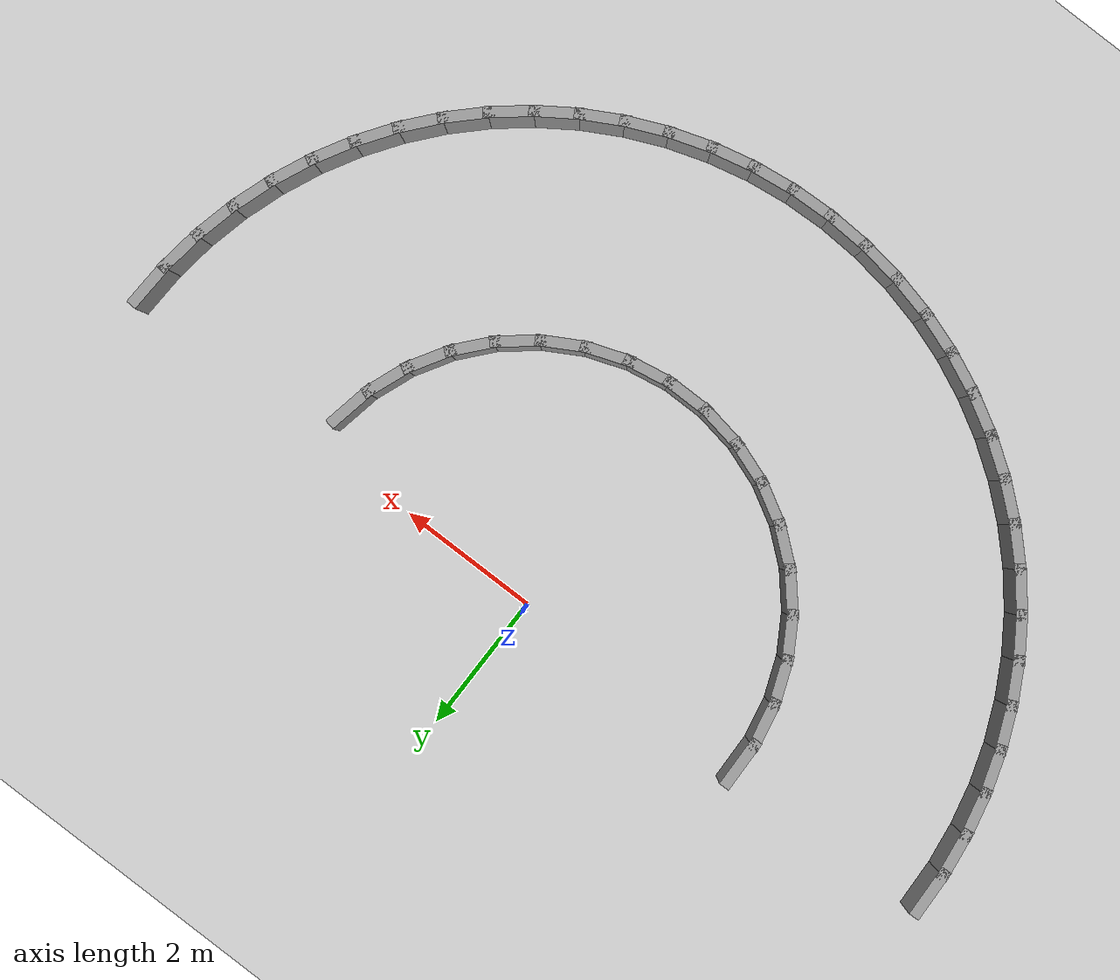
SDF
<sdf version="1.7">
 <world name="default">
  <model name="ground_plane">
   <static>1</static>
   <link name="link">
    <collision name="collision">
     <geometry><plane><normal>0 0 1</normal><size>100 100</size></plane></geometry>
     <surface><friction><ode><mu>100</mu><mu2>50</mu2></ode></friction></surface>
    </collision>
    <visual name="visual">
     <cast_shadows>0</cast_shadows>
     <geometry><plane><normal>0 0 1</normal><size>100 100</size></plane></geometry>
     <material>
      <script><uri>file://media/materials/scripts/gazebo.material</uri><name>Gazebo/Grey</name></script>
     </material>
    </visual>
   </link>
  </model>
  <model name="roundabout_small">
   <link name="Wall_18">
    <collision name="Wall_18_Collision">
     <geometry><box><size>0.7493 0.1500 0.6000</size></box></geometry>
     <pose>0 0 0.3000 0 -0 0</pose>
    </collision>
    <visual name="Wall_18_Visual">
     <pose>0 0 0.3000 0 -0 0</pose>
     <geometry><box><size>0.7493 0.1500 0.6000</size></box></geometry>
     <material>
      <script><uri>file://media/materials/scripts/gazebo.material</uri><name>Gazebo/Grey</name></script>
      <ambient>1 1 1 1</ambient>
     </material>
    </visual>
    <pose>-3.4856 -0.1040 0 0 -0 -1.54094</pose>
   </link>
   <link name="Wall_19">
    <collision name="Wall_19_Collision">
     <geometry><box><size>0.7493 0.1500 0.6000</size></box></geometry>
     <pose>0 0 0.3000 0 -0 0</pose>
    </collision>
    <visual name="Wall_19_Visual">
     <pose>0 0 0.3000 0 -0 0</pose>
     <geometry><box><size>0.7493 0.1500 0.6000</size></box></geometry>
     <material>
      <script><uri>file://media/materials/scripts/gazebo.material</uri><name>Gazebo/Grey</name></script>
      <ambient>1 1 1 1</ambient>
     </material>
    </visual>
    <pose>-3.4167 -0.6971 0 0 -0 -1.36953</pose>
   </link>
   <link name="Wall_20">
    <collision name="Wall_20_Collision">
     <geometry><box><size>0.7493 0.1500 0.6000</size></box></geometry>
     <pose>0 0 0.3000 0 -0 0</pose>
    </collision>
    <visual name="Wall_20_Visual">
     <pose>0 0 0.3000 0 -0 0</pose>
     <geometry><box><size>0.7493 0.1500 0.6000</size></box></geometry>
     <material>
      <script><uri>file://media/materials/scripts/gazebo.material</uri><name>Gazebo/Grey</name></script>
      <ambient>1 1 1 1</ambient>
     </material>
    </visual>
    <pose>-3.2477 -1.2698 0 0 -0 -1.19812</pose>
   </link>
   <link name="Wall_21">
    <collision name="Wall_21_Collision">
     <geometry><box><size>0.7493 0.1500 0.6000</size></box></geometry>
     <pose>0 0 0.3000 0 -0 0</pose>
    </collision>
    <visual name="Wall_21_Visual">
     <pose>0 0 0.3000 0 -0 0</pose>
     <geometry><box><size>0.7493 0.1500 0.6000</size></box></geometry>
     <material>
      <script><uri>file://media/materials/scripts/gazebo.material</uri><name>Gazebo/Grey</name></script>
      <ambient>1 1 1 1</ambient>
     </material>
    </visual>
    <pose>-2.9835 -1.8052 0 0 -0 -1.02665</pose>
   </link>
   <link name="Wall_22">
    <collision name="Wall_22_Collision">
     <geometry><box><size>0.7493 0.1500 0.6000</size></box></geometry>
     <pose>0 0 0.3000 0 -0 0</pose>
    </collision>
    <visual name="Wall_22_Visual">
     <pose>0 0 0.3000 0 -0 0</pose>
     <geometry><box><size>0.7493 0.1500 0.6000</size></box></geometry>
     <material>
      <script><uri>file://media/materials/scripts/gazebo.material</uri><name>Gazebo/Grey</name></script>
      <ambient>1 1 1 1</ambient>
     </material>
    </visual>
    <pose>-2.6318 -2.2877 0 0 -0 -0.85523</pose>
   </link>
   <link name="Wall_23">
    <collision name="Wall_23_Collision">
     <geometry><box><size>0.7493 0.1500 0.6000</size></box></geometry>
     <pose>0 0 0.3000 0 -0 0</pose>
    </collision>
    <visual name="Wall_23_Visual">
     <pose>0 0 0.3000 0 -0 0</pose>
     <geometry><box><size>0.7493 0.1500 0.6000</size></box></geometry>
     <material>
      <script><uri>file://media/materials/scripts/gazebo.material</uri><name>Gazebo/Grey</name></script>
      <ambient>1 1 1 1</ambient>
     </material>
    </visual>
    <pose>-2.2030 -2.7031 0 0 -0 -0.68382</pose>
   </link>
   <link name="Wall_24">
    <collision name="Wall_24_Collision">
     <geometry><box><size>0.7493 0.1500 0.6000</size></box></geometry>
     <pose>0 0 0.3000 0 -0 0</pose>
    </collision>
    <visual name="Wall_24_Visual">
     <pose>0 0 0.3000 0 -0 0</pose>
     <geometry><box><size>0.7493 0.1500 0.6000</size></box></geometry>
     <material>
      <script><uri>file://media/materials/scripts/gazebo.material</uri><name>Gazebo/Grey</name></script>
      <ambient>1 1 1 1</ambient>
     </material>
    </visual>
    <pose>-1.7096 -3.0393 0 0 -0 -0.51239</pose>
   </link>
   <link name="Wall_25">
    <collision name="Wall_25_Collision">
     <geometry><box><size>0.7493 0.1500 0.6000</size></box></geometry>
     <pose>0 0 0.3000 0 -0 0</pose>
    </collision>
    <visual name="Wall_25_Visual">
     <pose>0 0 0.3000 0 -0 0</pose>
     <geometry><box><size>0.7493 0.1500 0.6000</size></box></geometry>
     <material>
      <script><uri>file://media/materials/scripts/gazebo.material</uri><name>Gazebo/Grey</name></script>
      <ambient>1 1 1 1</ambient>
     </material>
    </visual>
    <pose>-1.1660 -3.2864 0 0 -0 -0.34094</pose>
   </link>
   <link name="Wall_26">
    <collision name="Wall_26_Collision">
     <geometry><box><size>0.7493 0.1500 0.6000</size></box></geometry>
     <pose>0 0 0.3000 0 -0 0</pose>
    </collision>
    <visual name="Wall_26_Visual">
     <pose>0 0 0.3000 0 -0 0</pose>
     <geometry><box><size>0.7493 0.1500 0.6000</size></box></geometry>
     <material>
      <script><uri>file://media/materials/scripts/gazebo.material</uri><name>Gazebo/Grey</name></script>
      <ambient>1 1 1 1</ambient>
     </material>
    </visual>
    <pose>-0.5883 -3.4371 0 0 -0 -0.16953</pose>
   </link>
   <link name="Wall_27">
    <collision name="Wall_27_Collision">
     <geometry><box><size>0.7493 0.1500 0.6000</size></box></geometry>
     <pose>0 0 0.3000 0 -0 0</pose>
    </collision>
    <visual name="Wall_27_Visual">
     <pose>0 0 0.3000 0 -0 0</pose>
     <geometry><box><size>0.7493 0.1500 0.6000</size></box></geometry>
     <material>
      <script><uri>file://media/materials/scripts/gazebo.material</uri><name>Gazebo/Grey</name></script>
      <ambient>1 1 1 1</ambient>
     </material>
    </visual>
    <pose>0.0066 -3.4871 0 0 -0 0.00188</pose>
   </link>
   <link name="Wall_28">
    <collision name="Wall_28_Collision">
     <geometry><box><size>0.7493 0.1500 0.6000</size></box></geometry>
     <pose>0 0 0.3000 0 -0 0</pose>
    </collision>
    <visual name="Wall_28_Visual">
     <pose>0 0 0.3000 0 -0 0</pose>
     <geometry><box><size>0.7493 0.1500 0.6000</size></box></geometry>
     <material>
      <script><uri>file://media/materials/scripts/gazebo.material</uri><name>Gazebo/Grey</name></script>
      <ambient>1 1 1 1</ambient>
     </material>
    </visual>
    <pose>0.6014 -3.4349 0 0 -0 0.17335</pose>
   </link>
   <link name="Wall_29">
    <collision name="Wall_29_Collision">
     <geometry><box><size>0.7493 0.1500 0.6000</size></box></geometry>
     <pose>0 0 0.3000 0 -0 0</pose>
    </collision>
    <visual name="Wall_29_Visual">
     <pose>0 0 0.3000 0 -0 0</pose>
     <geometry><box><size>0.7493 0.1500 0.6000</size></box></geometry>
     <material>
      <script><uri>file://media/materials/scripts/gazebo.material</uri><name>Gazebo/Grey</name></script>
      <ambient>1 1 1 1</ambient>
     </material>
    </visual>
    <pose>1.1786 -3.2819 0 0 -0 0.34477</pose>
   </link>
   <link name="Wall_30">
    <collision name="Wall_30_Collision">
     <geometry><box><size>0.7493 0.1500 0.6000</size></box></geometry>
     <pose>0 0 0.3000 0 -0 0</pose>
    </collision>
    <visual name="Wall_30_Visual">
     <pose>0 0 0.3000 0 -0 0</pose>
     <geometry><box><size>0.7493 0.1500 0.6000</size></box></geometry>
     <material>
      <script><uri>file://media/materials/scripts/gazebo.material</uri><name>Gazebo/Grey</name></script>
      <ambient>1 1 1 1</ambient>
     </material>
    </visual>
    <pose>1.7211 -3.0328 0 0 -0 0.51618</pose>
   </link>
   <link name="Wall_31">
    <collision name="Wall_31_Collision">
     <geometry><box><size>0.7493 0.1500 0.6000</size></box></geometry>
     <pose>0 0 0.3000 0 -0 0</pose>
    </collision>
    <visual name="Wall_31_Visual">
     <pose>0 0 0.3000 0 -0 0</pose>
     <geometry><box><size>0.7493 0.1500 0.6000</size></box></geometry>
     <material>
      <script><uri>file://media/materials/scripts/gazebo.material</uri><name>Gazebo/Grey</name></script>
      <ambient>1 1 1 1</ambient>
     </material>
    </visual>
    <pose>2.2133 -2.6947 0 0 -0 0.68761</pose>
   </link>
   <link name="Wall_32">
    <collision name="Wall_32_Collision">
     <geometry><box><size>0.7493 0.1500 0.6000</size></box></geometry>
     <pose>0 0 0.3000 0 -0 0</pose>
    </collision>
    <visual name="Wall_32_Visual">
     <pose>0 0 0.3000 0 -0 0</pose>
     <geometry><box><size>0.7493 0.1500 0.6000</size></box></geometry>
     <material>
      <script><uri>file://media/materials/scripts/gazebo.material</uri><name>Gazebo/Grey</name></script>
      <ambient>1 1 1 1</ambient>
     </material>
    </visual>
    <pose>2.6405 -2.2777 0 0 -0 0.85907</pose>
   </link>
   <link name="Wall_33">
    <collision name="Wall_33_Collision">
     <geometry><box><size>0.7493 0.1500 0.6000</size></box></geometry>
     <pose>0 0 0.3000 0 -0 0</pose>
    </collision>
    <visual name="Wall_33_Visual">
     <pose>0 0 0.3000 0 -0 0</pose>
     <geometry><box><size>0.7493 0.1500 0.6000</size></box></geometry>
     <material>
      <script><uri>file://media/materials/scripts/gazebo.material</uri><name>Gazebo/Grey</name></script>
      <ambient>1 1 1 1</ambient>
     </material>
    </visual>
    <pose>2.9904 -1.7938 0 0 -0 1.03048</pose>
   </link>
   <link name="Wall_34">
    <collision name="Wall_34_Collision">
     <geometry><box><size>0.7493 0.1500 0.6000</size></box></geometry>
     <pose>0 0 0.3000 0 -0 0</pose>
    </collision>
    <visual name="Wall_34_Visual">
     <pose>0 0 0.3000 0 -0 0</pose>
     <geometry><box><size>0.7493 0.1500 0.6000</size></box></geometry>
     <material>
      <script><uri>file://media/materials/scripts/gazebo.material</uri><name>Gazebo/Grey</name></script>
      <ambient>1 1 1 1</ambient>
     </material>
    </visual>
    <pose>3.2526 -1.2574 0 0 -0 1.20189</pose>
   </link>
   <link name="Wall_35">
    <collision name="Wall_35_Collision">
     <geometry><box><size>0.7493 0.1500 0.6000</size></box></geometry>
     <pose>0 0 0.3000 0 -0 0</pose>
    </collision>
    <visual name="Wall_35_Visual">
     <pose>0 0 0.3000 0 -0 0</pose>
     <geometry><box><size>0.7493 0.1500 0.6000</size></box></geometry>
     <material>
      <script><uri>file://media/materials/scripts/gazebo.material</uri><name>Gazebo/Grey</name></script>
      <ambient>1 1 1 1</ambient>
     </material>
    </visual>
    <pose>3.4194 -0.6841 0 0 -0 1.37335</pose>
   </link>
   <link name="Wall_70">
    <collision name="Wall_70_Collision">
     <geometry><box><size>0.7498 0.1500 0.6000</size></box></geometry>
     <pose>0 0 0.3000 0 -0 0</pose>
    </collision>
    <visual name="Wall_70_Visual">
     <pose>0 0 0.3000 0 -0 0</pose>
     <geometry><box><size>0.7498 0.1500 0.6000</size></box></geometry>
     <material>
      <script><uri>file://media/materials/scripts/gazebo.material</uri><name>Gazebo/Grey</name></script>
      <ambient>1 1 1 1</ambient>
     </material>
    </visual>
    <pose>-6.4870 -0.2793 0 0 -0 -1.52779</pose>
   </link>
   <link name="Wall_71">
    <collision name="Wall_71_Collision">
     <geometry><box><size>0.7498 0.1500 0.6000</size></box></geometry>
     <pose>0 0 0.3000 0 -0 0</pose>
    </collision>
    <visual name="Wall_71_Visual">
     <pose>0 0 0.3000 0 -0 0</pose>
     <geometry><box><size>0.7498 0.1500 0.6000</size></box></geometry>
     <material>
      <script><uri>file://media/materials/scripts/gazebo.material</uri><name>Gazebo/Grey</name></script>
      <ambient>1 1 1 1</ambient>
     </material>
    </visual>
    <pose>-6.4337 -0.8761 0 0 -0 -1.43547</pose>
   </link>
   <link name="Wall_72">
    <collision name="Wall_72_Collision">
     <geometry><box><size>0.7498 0.1500 0.6000</size></box></geometry>
     <pose>0 0 0.3000 0 -0 0</pose>
    </collision>
    <visual name="Wall_72_Visual">
     <pose>0 0 0.3000 0 -0 0</pose>
     <geometry><box><size>0.7498 0.1500 0.6000</size></box></geometry>
     <material>
      <script><uri>file://media/materials/scripts/gazebo.material</uri><name>Gazebo/Grey</name></script>
      <ambient>1 1 1 1</ambient>
     </material>
    </visual>
    <pose>-6.3255 -1.4654 0 0 -0 -1.34312</pose>
   </link>
   <link name="Wall_73">
    <collision name="Wall_73_Collision">
     <geometry><box><size>0.7498 0.1500 0.6000</size></box></geometry>
     <pose>0 0 0.3000 0 -0 0</pose>
    </collision>
    <visual name="Wall_73_Visual">
     <pose>0 0 0.3000 0 -0 0</pose>
     <geometry><box><size>0.7498 0.1500 0.6000</size></box></geometry>
     <material>
      <script><uri>file://media/materials/scripts/gazebo.material</uri><name>Gazebo/Grey</name></script>
      <ambient>1 1 1 1</ambient>
     </material>
    </visual>
    <pose>-6.1635 -2.0422 0 0 -0 -1.25086</pose>
   </link>
   <link name="Wall_74">
    <collision name="Wall_74_Collision">
     <geometry><box><size>0.7498 0.1500 0.6000</size></box></geometry>
     <pose>0 0 0.3000 0 -0 0</pose>
    </collision>
    <visual name="Wall_74_Visual">
     <pose>0 0 0.3000 0 -0 0</pose>
     <geometry><box><size>0.7498 0.1500 0.6000</size></box></geometry>
     <material>
      <script><uri>file://media/materials/scripts/gazebo.material</uri><name>Gazebo/Grey</name></script>
      <ambient>1 1 1 1</ambient>
     </material>
    </visual>
    <pose>-5.9491 -2.6016 0 0 -0 -1.15857</pose>
   </link>
   <link name="Wall_75">
    <collision name="Wall_75_Collision">
     <geometry><box><size>0.7498 0.1500 0.6000</size></box></geometry>
     <pose>0 0 0.3000 0 -0 0</pose>
    </collision>
    <visual name="Wall_75_Visual">
     <pose>0 0 0.3000 0 -0 0</pose>
     <geometry><box><size>0.7498 0.1500 0.6000</size></box></geometry>
     <material>
      <script><uri>file://media/materials/scripts/gazebo.material</uri><name>Gazebo/Grey</name></script>
      <ambient>1 1 1 1</ambient>
     </material>
    </visual>
    <pose>-5.6839 -3.1389 0 0 -0 -1.06619</pose>
   </link>
   <link name="Wall_76">
    <collision name="Wall_76_Collision">
     <geometry><box><size>0.7498 0.1500 0.6000</size></box></geometry>
     <pose>0 0 0.3000 0 -0 0</pose>
    </collision>
    <visual name="Wall_76_Visual">
     <pose>0 0 0.3000 0 -0 0</pose>
     <geometry><box><size>0.7498 0.1500 0.6000</size></box></geometry>
     <material>
      <script><uri>file://media/materials/scripts/gazebo.material</uri><name>Gazebo/Grey</name></script>
      <ambient>1 1 1 1</ambient>
     </material>
    </visual>
    <pose>-5.3704 -3.6495 0 0 -0 -0.97392</pose>
   </link>
   <link name="Wall_77">
    <collision name="Wall_77_Collision">
     <geometry><box><size>0.7498 0.1500 0.6000</size></box></geometry>
     <pose>0 0 0.3000 0 -0 0</pose>
    </collision>
    <visual name="Wall_77_Visual">
     <pose>0 0 0.3000 0 -0 0</pose>
     <geometry><box><size>0.7498 0.1500 0.6000</size></box></geometry>
     <material>
      <script><uri>file://media/materials/scripts/gazebo.material</uri><name>Gazebo/Grey</name></script>
      <ambient>1 1 1 1</ambient>
     </material>
    </visual>
    <pose>-5.0111 -4.1290 0 0 -0 -0.88165</pose>
   </link>
   <link name="Wall_78">
    <collision name="Wall_78_Collision">
     <geometry><box><size>0.7498 0.1500 0.6000</size></box></geometry>
     <pose>0 0 0.3000 0 -0 0</pose>
    </collision>
    <visual name="Wall_78_Visual">
     <pose>0 0 0.3000 0 -0 0</pose>
     <geometry><box><size>0.7498 0.1500 0.6000</size></box></geometry>
     <material>
      <script><uri>file://media/materials/scripts/gazebo.material</uri><name>Gazebo/Grey</name></script>
      <ambient>1 1 1 1</ambient>
     </material>
    </visual>
    <pose>-4.6092 -4.5733 0 0 -0 -0.78927</pose>
   </link>
   <link name="Wall_79">
    <collision name="Wall_79_Collision">
     <geometry><box><size>0.7498 0.1500 0.6000</size></box></geometry>
     <pose>0 0 0.3000 0 -0 0</pose>
    </collision>
    <visual name="Wall_79_Visual">
     <pose>0 0 0.3000 0 -0 0</pose>
     <geometry><box><size>0.7498 0.1500 0.6000</size></box></geometry>
     <material>
      <script><uri>file://media/materials/scripts/gazebo.material</uri><name>Gazebo/Grey</name></script>
      <ambient>1 1 1 1</ambient>
     </material>
    </visual>
    <pose>-4.1680 -4.9787 0 0 -0 -0.69699</pose>
   </link>
   <link name="Wall_80">
    <collision name="Wall_80_Collision">
     <geometry><box><size>0.7498 0.1500 0.6000</size></box></geometry>
     <pose>0 0 0.3000 0 -0 0</pose>
    </collision>
    <visual name="Wall_80_Visual">
     <pose>0 0 0.3000 0 -0 0</pose>
     <geometry><box><size>0.7498 0.1500 0.6000</size></box></geometry>
     <material>
      <script><uri>file://media/materials/scripts/gazebo.material</uri><name>Gazebo/Grey</name></script>
      <ambient>1 1 1 1</ambient>
     </material>
    </visual>
    <pose>-3.6913 -5.3417 0 0 -0 -0.60472</pose>
   </link>
   <link name="Wall_81">
    <collision name="Wall_81_Collision">
     <geometry><box><size>0.7498 0.1500 0.6000</size></box></geometry>
     <pose>0 0 0.3000 0 -0 0</pose>
    </collision>
    <visual name="Wall_81_Visual">
     <pose>0 0 0.3000 0 -0 0</pose>
     <geometry><box><size>0.7498 0.1500 0.6000</size></box></geometry>
     <material>
      <script><uri>file://media/materials/scripts/gazebo.material</uri><name>Gazebo/Grey</name></script>
      <ambient>1 1 1 1</ambient>
     </material>
    </visual>
    <pose>-3.1833 -5.6592 0 0 -0 -0.51237</pose>
   </link>
   <link name="Wall_82">
    <collision name="Wall_82_Collision">
     <geometry><box><size>0.7498 0.1500 0.6000</size></box></geometry>
     <pose>0 0 0.3000 0 -0 0</pose>
    </collision>
    <visual name="Wall_82_Visual">
     <pose>0 0 0.3000 0 -0 0</pose>
     <geometry><box><size>0.7498 0.1500 0.6000</size></box></geometry>
     <material>
      <script><uri>file://media/materials/scripts/gazebo.material</uri><name>Gazebo/Grey</name></script>
      <ambient>1 1 1 1</ambient>
     </material>
    </visual>
    <pose>-2.6481 -5.9285 0 0 -0 -0.42006</pose>
   </link>
   <link name="Wall_83">
    <collision name="Wall_83_Collision">
     <geometry><box><size>0.7498 0.1500 0.6000</size></box></geometry>
     <pose>0 0 0.3000 0 -0 0</pose>
    </collision>
    <visual name="Wall_83_Visual">
     <pose>0 0 0.3000 0 -0 0</pose>
     <geometry><box><size>0.7498 0.1500 0.6000</size></box></geometry>
     <material>
      <script><uri>file://media/materials/scripts/gazebo.material</uri><name>Gazebo/Grey</name></script>
      <ambient>1 1 1 1</ambient>
     </material>
    </visual>
    <pose>-2.0903 -6.1474 0 0 -0 -0.32779</pose>
   </link>
   <link name="Wall_84">
    <collision name="Wall_84_Collision">
     <geometry><box><size>0.7498 0.1500 0.6000</size></box></geometry>
     <pose>0 0 0.3000 0 -0 0</pose>
    </collision>
    <visual name="Wall_84_Visual">
     <pose>0 0 0.3000 0 -0 0</pose>
     <geometry><box><size>0.7498 0.1500 0.6000</size></box></geometry>
     <material>
      <script><uri>file://media/materials/scripts/gazebo.material</uri><name>Gazebo/Grey</name></script>
      <ambient>1 1 1 1</ambient>
     </material>
    </visual>
    <pose>-1.5148 -6.3139 0 0 -0 -0.23547</pose>
   </link>
   <link name="Wall_85">
    <collision name="Wall_85_Collision">
     <geometry><box><size>0.7498 0.1500 0.6000</size></box></geometry>
     <pose>0 0 0.3000 0 -0 0</pose>
    </collision>
    <visual name="Wall_85_Visual">
     <pose>0 0 0.3000 0 -0 0</pose>
     <geometry><box><size>0.7498 0.1500 0.6000</size></box></geometry>
     <material>
      <script><uri>file://media/materials/scripts/gazebo.material</uri><name>Gazebo/Grey</name></script>
      <ambient>1 1 1 1</ambient>
     </material>
    </visual>
    <pose>-0.9263 -6.4266 0 0 -0 -0.14312</pose>
   </link>
   <link name="Wall_86">
    <collision name="Wall_86_Collision">
     <geometry><box><size>0.7498 0.1500 0.6000</size></box></geometry>
     <pose>0 0 0.3000 0 -0 0</pose>
    </collision>
    <visual name="Wall_86_Visual">
     <pose>0 0 0.3000 0 -0 0</pose>
     <geometry><box><size>0.7498 0.1500 0.6000</size></box></geometry>
     <material>
      <script><uri>file://media/materials/scripts/gazebo.material</uri><name>Gazebo/Grey</name></script>
      <ambient>1 1 1 1</ambient>
     </material>
    </visual>
    <pose>-0.3300 -6.4847 0 0 -0 -0.05085</pose>
   </link>
   <link name="Wall_87">
    <collision name="Wall_87_Collision">
     <geometry><box><size>0.7498 0.1500 0.6000</size></box></geometry>
     <pose>0 0 0.3000 0 -0 0</pose>
    </collision>
    <visual name="Wall_87_Visual">
     <pose>0 0 0.3000 0 -0 0</pose>
     <geometry><box><size>0.7498 0.1500 0.6000</size></box></geometry>
     <material>
      <script><uri>file://media/materials/scripts/gazebo.material</uri><name>Gazebo/Grey</name></script>
      <ambient>1 1 1 1</ambient>
     </material>
    </visual>
    <pose>0.2692 -6.4875 0 0 -0 0.04144</pose>
   </link>
   <link name="Wall_88">
    <collision name="Wall_88_Collision">
     <geometry><box><size>0.7498 0.1500 0.6000</size></box></geometry>
     <pose>0 0 0.3000 0 -0 0</pose>
    </collision>
    <visual name="Wall_88_Visual">
     <pose>0 0 0.3000 0 -0 0</pose>
     <geometry><box><size>0.7498 0.1500 0.6000</size></box></geometry>
     <material>
      <script><uri>file://media/materials/scripts/gazebo.material</uri><name>Gazebo/Grey</name></script>
      <ambient>1 1 1 1</ambient>
     </material>
    </visual>
    <pose>0.8660 -6.4350 0 0 -0 0.13381</pose>
   </link>
   <link name="Wall_89">
    <collision name="Wall_89_Collision">
     <geometry><box><size>0.7498 0.1500 0.6000</size></box></geometry>
     <pose>0 0 0.3000 0 -0 0</pose>
    </collision>
    <visual name="Wall_89_Visual">
     <pose>0 0 0.3000 0 -0 0</pose>
     <geometry><box><size>0.7498 0.1500 0.6000</size></box></geometry>
     <material>
      <script><uri>file://media/materials/scripts/gazebo.material</uri><name>Gazebo/Grey</name></script>
      <ambient>1 1 1 1</ambient>
     </material>
    </visual>
    <pose>1.4555 -6.3278 0 0 -0 0.22608</pose>
   </link>
   <link name="Wall_90">
    <collision name="Wall_90_Collision">
     <geometry><box><size>0.7498 0.1500 0.6000</size></box></geometry>
     <pose>0 0 0.3000 0 -0 0</pose>
    </collision>
    <visual name="Wall_90_Visual">
     <pose>0 0 0.3000 0 -0 0</pose>
     <geometry><box><size>0.7498 0.1500 0.6000</size></box></geometry>
     <material>
      <script><uri>file://media/materials/scripts/gazebo.material</uri><name>Gazebo/Grey</name></script>
      <ambient>1 1 1 1</ambient>
     </material>
    </visual>
    <pose>2.0326 -6.1667 0 0 -0 0.31835</pose>
   </link>
   <link name="Wall_91">
    <collision name="Wall_91_Collision">
     <geometry><box><size>0.7498 0.1500 0.6000</size></box></geometry>
     <pose>0 0 0.3000 0 -0 0</pose>
    </collision>
    <visual name="Wall_91_Visual">
     <pose>0 0 0.3000 0 -0 0</pose>
     <geometry><box><size>0.7498 0.1500 0.6000</size></box></geometry>
     <material>
      <script><uri>file://media/materials/scripts/gazebo.material</uri><name>Gazebo/Grey</name></script>
      <ambient>1 1 1 1</ambient>
     </material>
    </visual>
    <pose>2.5923 -5.9531 0 0 -0 0.41074</pose>
   </link>
   <link name="Wall_92">
    <collision name="Wall_92_Collision">
     <geometry><box><size>0.7498 0.1500 0.6000</size></box></geometry>
     <pose>0 0 0.3000 0 -0 0</pose>
    </collision>
    <visual name="Wall_92_Visual">
     <pose>0 0 0.3000 0 -0 0</pose>
     <geometry><box><size>0.7498 0.1500 0.6000</size></box></geometry>
     <material>
      <script><uri>file://media/materials/scripts/gazebo.material</uri><name>Gazebo/Grey</name></script>
      <ambient>1 1 1 1</ambient>
     </material>
    </visual>
    <pose>3.1300 -5.6888 0 0 -0 0.50301</pose>
   </link>
   <link name="Wall_93">
    <collision name="Wall_93_Collision">
     <geometry><box><size>0.7498 0.1500 0.6000</size></box></geometry>
     <pose>0 0 0.3000 0 -0 0</pose>
    </collision>
    <visual name="Wall_93_Visual">
     <pose>0 0 0.3000 0 -0 0</pose>
     <geometry><box><size>0.7498 0.1500 0.6000</size></box></geometry>
     <material>
      <script><uri>file://media/materials/scripts/gazebo.material</uri><name>Gazebo/Grey</name></script>
      <ambient>1 1 1 1</ambient>
     </material>
    </visual>
    <pose>3.6411 -5.3761 0 0 -0 0.59528</pose>
   </link>
   <link name="Wall_94">
    <collision name="Wall_94_Collision">
     <geometry><box><size>0.7498 0.1500 0.6000</size></box></geometry>
     <pose>0 0 0.3000 0 -0 0</pose>
    </collision>
    <visual name="Wall_94_Visual">
     <pose>0 0 0.3000 0 -0 0</pose>
     <geometry><box><size>0.7498 0.1500 0.6000</size></box></geometry>
     <material>
      <script><uri>file://media/materials/scripts/gazebo.material</uri><name>Gazebo/Grey</name></script>
      <ambient>1 1 1 1</ambient>
     </material>
    </visual>
    <pose>4.1211 -5.0176 0 0 -0 0.68764</pose>
   </link>
   <link name="Wall_95">
    <collision name="Wall_95_Collision">
     <geometry><box><size>0.7498 0.1500 0.6000</size></box></geometry>
     <pose>0 0 0.3000 0 -0 0</pose>
    </collision>
    <visual name="Wall_95_Visual">
     <pose>0 0 0.3000 0 -0 0</pose>
     <geometry><box><size>0.7498 0.1500 0.6000</size></box></geometry>
     <material>
      <script><uri>file://media/materials/scripts/gazebo.material</uri><name>Gazebo/Grey</name></script>
      <ambient>1 1 1 1</ambient>
     </material>
    </visual>
    <pose>4.5661 -4.6163 0 0 -0 0.77994</pose>
   </link>
   <link name="Wall_96">
    <collision name="Wall_96_Collision">
     <geometry><box><size>0.7498 0.1500 0.6000</size></box></geometry>
     <pose>0 0 0.3000 0 -0 0</pose>
    </collision>
    <visual name="Wall_96_Visual">
     <pose>0 0 0.3000 0 -0 0</pose>
     <geometry><box><size>0.7498 0.1500 0.6000</size></box></geometry>
     <material>
      <script><uri>file://media/materials/scripts/gazebo.material</uri><name>Gazebo/Grey</name></script>
      <ambient>1 1 1 1</ambient>
     </material>
    </visual>
    <pose>4.9722 -4.1758 0 0 -0 0.87221</pose>
   </link>
   <link name="Wall_97">
    <collision name="Wall_97_Collision">
     <geometry><box><size>0.7498 0.1500 0.6000</size></box></geometry>
     <pose>0 0 0.3000 0 -0 0</pose>
    </collision>
    <visual name="Wall_97_Visual">
     <pose>0 0 0.3000 0 -0 0</pose>
     <geometry><box><size>0.7498 0.1500 0.6000</size></box></geometry>
     <material>
      <script><uri>file://media/materials/scripts/gazebo.material</uri><name>Gazebo/Grey</name></script>
      <ambient>1 1 1 1</ambient>
     </material>
    </visual>
    <pose>5.3359 -3.6997 0 0 -0 0.96454</pose>
   </link>
   <link name="Wall_98">
    <collision name="Wall_98_Collision">
     <geometry><box><size>0.7498 0.1500 0.6000</size></box></geometry>
     <pose>0 0 0.3000 0 -0 0</pose>
    </collision>
    <visual name="Wall_98_Visual">
     <pose>0 0 0.3000 0 -0 0</pose>
     <geometry><box><size>0.7498 0.1500 0.6000</size></box></geometry>
     <material>
      <script><uri>file://media/materials/scripts/gazebo.material</uri><name>Gazebo/Grey</name></script>
      <ambient>1 1 1 1</ambient>
     </material>
    </visual>
    <pose>5.6542 -3.1921 0 0 -0 1.05688</pose>
   </link>
   <link name="Wall_99">
    <collision name="Wall_99_Collision">
     <geometry><box><size>0.7498 0.1500 0.6000</size></box></geometry>
     <pose>0 0 0.3000 0 -0 0</pose>
    </collision>
    <visual name="Wall_99_Visual">
     <pose>0 0 0.3000 0 -0 0</pose>
     <geometry><box><size>0.7498 0.1500 0.6000</size></box></geometry>
     <material>
      <script><uri>file://media/materials/scripts/gazebo.material</uri><name>Gazebo/Grey</name></script>
      <ambient>1 1 1 1</ambient>
     </material>
    </visual>
    <pose>5.9244 -2.6573 0 0 -0 1.14915</pose>
   </link>
   <link name="Wall_100">
    <collision name="Wall_100_Collision">
     <geometry><box><size>0.7498 0.1500 0.6000</size></box></geometry>
     <pose>0 0 0.3000 0 -0 0</pose>
    </collision>
    <visual name="Wall_100_Visual">
     <pose>0 0 0.3000 0 -0 0</pose>
     <geometry><box><size>0.7498 0.1500 0.6000</size></box></geometry>
     <material>
      <script><uri>file://media/materials/scripts/gazebo.material</uri><name>Gazebo/Grey</name></script>
      <ambient>1 1 1 1</ambient>
     </material>
    </visual>
    <pose>6.1441 -2.0999 0 0 -0 1.24144</pose>
   </link>
   <link name="Wall_101">
    <collision name="Wall_101_Collision">
     <geometry><box><size>0.7498 0.1500 0.6000</size></box></geometry>
     <pose>0 0 0.3000 0 -0 0</pose>
    </collision>
    <visual name="Wall_101_Visual">
     <pose>0 0 0.3000 0 -0 0</pose>
     <geometry><box><size>0.7498 0.1500 0.6000</size></box></geometry>
     <material>
      <script><uri>file://media/materials/scripts/gazebo.material</uri><name>Gazebo/Grey</name></script>
      <ambient>1 1 1 1</ambient>
     </material>
    </visual>
    <pose>6.3115 -1.5246 0 0 -0 1.33381</pose>
   </link>
   <link name="Wall_102">
    <collision name="Wall_102_Collision">
     <geometry><box><size>0.7498 0.1500 0.6000</size></box></geometry>
     <pose>0 0 0.3000 0 -0 0</pose>
    </collision>
    <visual name="Wall_102_Visual">
     <pose>0 0 0.3000 0 -0 0</pose>
     <geometry><box><size>0.7498 0.1500 0.6000</size></box></geometry>
     <material>
      <script><uri>file://media/materials/scripts/gazebo.material</uri><name>Gazebo/Grey</name></script>
      <ambient>1 1 1 1</ambient>
     </material>
    </visual>
    <pose>6.4252 -0.9364 0 0 -0 1.42608</pose>
   </link>
   <link name="Wall_103">
    <collision name="Wall_103_Collision">
     <geometry><box><size>0.7498 0.1500 0.6000</size></box></geometry>
     <pose>0 0 0.3000 0 -0 0</pose>
    </collision>
    <visual name="Wall_103_Visual">
     <pose>0 0 0.3000 0 -0 0</pose>
     <geometry><box><size>0.7498 0.1500 0.6000</size></box></geometry>
     <material>
      <script><uri>file://media/materials/scripts/gazebo.material</uri><name>Gazebo/Grey</name></script>
      <ambient>1 1 1 1</ambient>
     </material>
    </visual>
    <pose>6.4841 -0.3401 0 0 -0 1.51835</pose>
   </link>
   <static>1</static>
  </model>
 </world>
</sdf>
